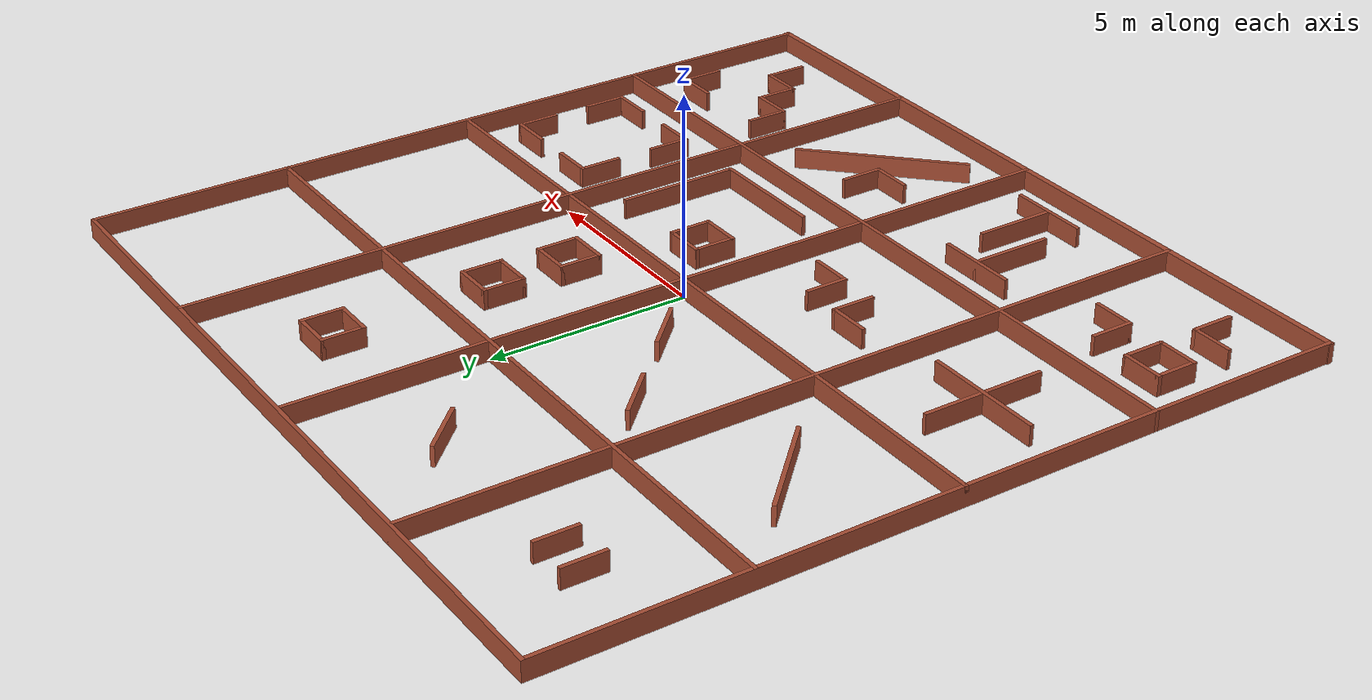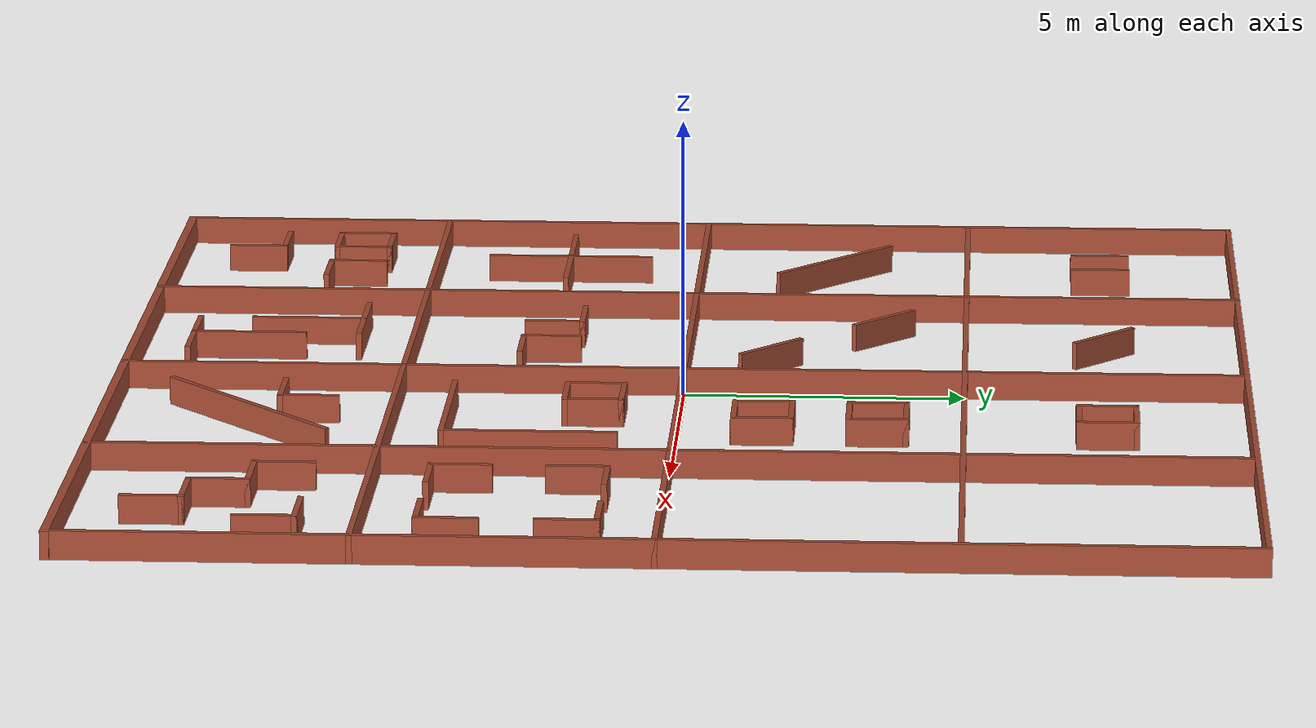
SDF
<?xml version='1.0'?>
<sdf version='1.7'>
  <model name='tb3_cplx_16'>
    <pose>0 -0.012499 0 0 -0 0</pose>
    <link name='Wall_0'>
      <collision name='Wall_0_Collision'>
        <geometry>
          <box>
            <size>20.1 0.1 0.5</size>
          </box>
        </geometry>
        <pose>0 0 0.25 0 -0 0</pose>
      </collision>
      <visual name='Wall_0_Visual'>
        <pose>0 0 0.25 0 -0 0</pose>
        <geometry>
          <box>
            <size>20.1 0.1 0.5</size>
          </box>
        </geometry>
        <material>
          <script>
            <uri>file://media/materials/scripts/gazebo.material</uri>
            <name>Gazebo/Bricks</name>
          </script>
          <ambient>0.760784 0.662745 0.627451 1</ambient>
        </material>
        <meta>
          <layer>0</layer>
        </meta>
      </visual>
      <pose>0 10.0125 0 0 -0 0</pose>
    </link>
    <link name='Wall_1'>
      <collision name='Wall_1_Collision'>
        <geometry>
          <box>
            <size>20.1 0.1 0.5</size>
          </box>
        </geometry>
        <pose>0 0 0.25 0 -0 0</pose>
      </collision>
      <visual name='Wall_1_Visual'>
        <pose>0 0 0.25 0 -0 0</pose>
        <geometry>
          <box>
            <size>20.1 0.1 0.5</size>
          </box>
        </geometry>
        <material>
          <script>
            <uri>file://media/materials/scripts/gazebo.material</uri>
            <name>Gazebo/Bricks</name>
          </script>
          <ambient>0.760784 0.662745 0.627451 1</ambient>
        </material>
        <meta>
          <layer>0</layer>
        </meta>
      </visual>
      <pose>10 0.012499 0 0 -0 -1.5708</pose>
    </link>
    <link name='Wall_100'>
      <collision name='Wall_100_Collision'>
        <geometry>
          <box>
            <size>1.1 0.1 0.5</size>
          </box>
        </geometry>
        <pose>0 0 0.25 0 -0 0</pose>
      </collision>
      <visual name='Wall_100_Visual'>
        <pose>0 0 0.25 0 -0 0</pose>
        <geometry>
          <box>
            <size>1.1 0.1 0.5</size>
          </box>
        </geometry>
        <material>
          <script>
            <uri>file://media/materials/scripts/gazebo.material</uri>
            <name>Gazebo/Bricks</name>
          </script>
          <ambient>0.760784 0.662745 0.627451 1</ambient>
        </material>
        <meta>
          <layer>0</layer>
        </meta>
      </visual>
      <pose>8.5 -0.987501 0 0 -0 0</pose>
    </link>
    <link name='Wall_101'>
      <collision name='Wall_101_Collision'>
        <geometry>
          <box>
            <size>1.1 0.1 0.5</size>
          </box>
        </geometry>
        <pose>0 0 0.25 0 -0 0</pose>
      </collision>
      <visual name='Wall_101_Visual'>
        <pose>0 0 0.25 0 -0 0</pose>
        <geometry>
          <box>
            <size>1.1 0.1 0.5</size>
          </box>
        </geometry>
        <material>
          <script>
            <uri>file://media/materials/scripts/gazebo.material</uri>
            <name>Gazebo/Bricks</name>
          </script>
          <ambient>0.760784 0.662745 0.627451 1</ambient>
        </material>
        <meta>
          <layer>0</layer>
        </meta>
      </visual>
      <pose>9 -1.4875 0 0 -0 -1.5708</pose>
    </link>
    <link name='Wall_103'>
      <collision name='Wall_103_Collision'>
        <geometry>
          <box>
            <size>1.1 0.1 0.5</size>
          </box>
        </geometry>
        <pose>0 0 0.25 0 -0 0</pose>
      </collision>
      <visual name='Wall_103_Visual'>
        <pose>0 0 0.25 0 -0 0</pose>
        <geometry>
          <box>
            <size>1.1 0.1 0.5</size>
          </box>
        </geometry>
        <material>
          <script>
            <uri>file://media/materials/scripts/gazebo.material</uri>
            <name>Gazebo/Bricks</name>
          </script>
          <ambient>0.760784 0.662745 0.627451 1</ambient>
        </material>
        <meta>
          <layer>0</layer>
        </meta>
      </visual>
      <pose>6 -3.4875 0 0 -0 -1.5708</pose>
    </link>
    <link name='Wall_104'>
      <collision name='Wall_104_Collision'>
        <geometry>
          <box>
            <size>1.1 0.1 0.5</size>
          </box>
        </geometry>
        <pose>0 0 0.25 0 -0 0</pose>
      </collision>
      <visual name='Wall_104_Visual'>
        <pose>0 0 0.25 0 -0 0</pose>
        <geometry>
          <box>
            <size>1.1 0.1 0.5</size>
          </box>
        </geometry>
        <material>
          <script>
            <uri>file://media/materials/scripts/gazebo.material</uri>
            <name>Gazebo/Bricks</name>
          </script>
          <ambient>0.760784 0.662745 0.627451 1</ambient>
        </material>
        <meta>
          <layer>0</layer>
        </meta>
      </visual>
      <pose>6.5 -3.9875 0 0 -0 0</pose>
    </link>
    <link name='Wall_106'>
      <collision name='Wall_106_Collision'>
        <geometry>
          <box>
            <size>1.1 0.1 0.5</size>
          </box>
        </geometry>
        <pose>0 0 0.25 0 -0 0</pose>
      </collision>
      <visual name='Wall_106_Visual'>
        <pose>0 0 0.25 0 -0 0</pose>
        <geometry>
          <box>
            <size>1.1 0.1 0.5</size>
          </box>
        </geometry>
        <material>
          <script>
            <uri>file://media/materials/scripts/gazebo.material</uri>
            <name>Gazebo/Bricks</name>
          </script>
          <ambient>0.760784 0.662745 0.627451 1</ambient>
        </material>
        <meta>
          <layer>0</layer>
        </meta>
      </visual>
      <pose>9 -3.4875 0 0 -0 -1.5708</pose>
    </link>
    <link name='Wall_107'>
      <collision name='Wall_107_Collision'>
        <geometry>
          <box>
            <size>1.1 0.1 0.5</size>
          </box>
        </geometry>
        <pose>0 0 0.25 0 -0 0</pose>
      </collision>
      <visual name='Wall_107_Visual'>
        <pose>0 0 0.25 0 -0 0</pose>
        <geometry>
          <box>
            <size>1.1 0.1 0.5</size>
          </box>
        </geometry>
        <material>
          <script>
            <uri>file://media/materials/scripts/gazebo.material</uri>
            <name>Gazebo/Bricks</name>
          </script>
          <ambient>0.760784 0.662745 0.627451 1</ambient>
        </material>
        <meta>
          <layer>0</layer>
        </meta>
      </visual>
      <pose>8.5 -3.9875 0 0 -0 3.14159</pose>
    </link>
    <link name='Wall_11'>
      <collision name='Wall_11_Collision'>
        <geometry>
          <box>
            <size>20.1 0.1 0.5</size>
          </box>
        </geometry>
        <pose>0 0 0.25 0 -0 0</pose>
      </collision>
      <visual name='Wall_11_Visual'>
        <pose>0 0 0.25 0 -0 0</pose>
        <geometry>
          <box>
            <size>20.1 0.1 0.5</size>
          </box>
        </geometry>
        <material>
          <script>
            <uri>file://media/materials/scripts/gazebo.material</uri>
            <name>Gazebo/Bricks</name>
          </script>
          <ambient>0.760784 0.662745 0.627451 1</ambient>
        </material>
        <meta>
          <layer>0</layer>
        </meta>
      </visual>
      <pose>0 0.012499 0 0 -0 -1.5708</pose>
    </link>
    <link name='Wall_13'>
      <collision name='Wall_13_Collision'>
        <geometry>
          <box>
            <size>20.1 0.1 0.5</size>
          </box>
        </geometry>
        <pose>0 0 0.25 0 -0 0</pose>
      </collision>
      <visual name='Wall_13_Visual'>
        <pose>0 0 0.25 0 -0 0</pose>
        <geometry>
          <box>
            <size>20.1 0.1 0.5</size>
          </box>
        </geometry>
        <material>
          <script>
            <uri>file://media/materials/scripts/gazebo.material</uri>
            <name>Gazebo/Bricks</name>
          </script>
          <ambient>0.760784 0.662745 0.627451 1</ambient>
        </material>
        <meta>
          <layer>0</layer>
        </meta>
      </visual>
      <pose>5 0.012499 0 0 -0 -1.5708</pose>
    </link>
    <link name='Wall_15'>
      <collision name='Wall_15_Collision'>
        <geometry>
          <box>
            <size>20.1 0.1 0.5</size>
          </box>
        </geometry>
        <pose>0 0 0.25 0 -0 0</pose>
      </collision>
      <visual name='Wall_15_Visual'>
        <pose>0 0 0.25 0 -0 0</pose>
        <geometry>
          <box>
            <size>20.1 0.1 0.5</size>
          </box>
        </geometry>
        <material>
          <script>
            <uri>file://media/materials/scripts/gazebo.material</uri>
            <name>Gazebo/Bricks</name>
          </script>
          <ambient>0.760784 0.662745 0.627451 1</ambient>
        </material>
        <meta>
          <layer>0</layer>
        </meta>
      </visual>
      <pose>0 0.012499 0 0 -0 0</pose>
    </link>
    <link name='Wall_17'>
      <collision name='Wall_17_Collision'>
        <geometry>
          <box>
            <size>1.51421 0.1 0.5</size>
          </box>
        </geometry>
        <pose>0 0 0.25 0 -0 0</pose>
      </collision>
      <visual name='Wall_17_Visual'>
        <pose>0 0 0.25 0 -0 0</pose>
        <geometry>
          <box>
            <size>1.51421 0.1 0.5</size>
          </box>
        </geometry>
        <material>
          <script>
            <uri>file://media/materials/scripts/gazebo.material</uri>
            <name>Gazebo/Bricks</name>
          </script>
          <ambient>0.760784 0.662745 0.627451 1</ambient>
        </material>
        <meta>
          <layer>0</layer>
        </meta>
      </visual>
      <pose>-2.5 7.5125 0 0 -0 2.35619</pose>
    </link>
    <link name='Wall_19'>
      <collision name='Wall_19_Collision'>
        <geometry>
          <box>
            <size>1.1 0.1 0.5</size>
          </box>
        </geometry>
        <pose>0 0 0.25 0 -0 0</pose>
      </collision>
      <visual name='Wall_19_Visual'>
        <pose>0 0 0.25 0 -0 0</pose>
        <geometry>
          <box>
            <size>1.1 0.1 0.5</size>
          </box>
        </geometry>
        <material>
          <script>
            <uri>file://media/materials/scripts/gazebo.material</uri>
            <name>Gazebo/Bricks</name>
          </script>
          <ambient>0.760784 0.662745 0.627451 1</ambient>
        </material>
        <meta>
          <layer>0</layer>
        </meta>
      </visual>
      <pose>2 7.5125 0 0 -0 -1.5708</pose>
    </link>
    <link name='Wall_2'>
      <collision name='Wall_2_Collision'>
        <geometry>
          <box>
            <size>20.15 0.15 0.5</size>
          </box>
        </geometry>
        <pose>0 0 0.25 0 -0 0</pose>
      </collision>
      <visual name='Wall_2_Visual'>
        <pose>0 0 0.25 0 -0 0</pose>
        <geometry>
          <box>
            <size>20.15 0.15 0.5</size>
          </box>
        </geometry>
        <material>
          <script>
            <uri>file://media/materials/scripts/gazebo.material</uri>
            <name>Gazebo/Bricks</name>
          </script>
          <ambient>0.760784 0.662745 0.627451 1</ambient>
        </material>
        <meta>
          <layer>0</layer>
        </meta>
      </visual>
      <pose>0 -9.9875 0 0 -0 3.14159</pose>
    </link>
    <link name='Wall_20'>
      <collision name='Wall_20_Collision'>
        <geometry>
          <box>
            <size>1.1 0.1 0.5</size>
          </box>
        </geometry>
        <pose>0 0 0.25 0 -0 0</pose>
      </collision>
      <visual name='Wall_20_Visual'>
        <pose>0 0 0.25 0 -0 0</pose>
        <geometry>
          <box>
            <size>1.1 0.1 0.5</size>
          </box>
        </geometry>
        <material>
          <script>
            <uri>file://media/materials/scripts/gazebo.material</uri>
            <name>Gazebo/Bricks</name>
          </script>
          <ambient>0.760784 0.662745 0.627451 1</ambient>
        </material>
        <meta>
          <layer>0</layer>
        </meta>
      </visual>
      <pose>2.5 7.0125 0 0 -0 0</pose>
    </link>
    <link name='Wall_21'>
      <collision name='Wall_21_Collision'>
        <geometry>
          <box>
            <size>1.1 0.1 0.5</size>
          </box>
        </geometry>
        <pose>0 0 0.25 0 -0 0</pose>
      </collision>
      <visual name='Wall_21_Visual'>
        <pose>0 0 0.25 0 -0 0</pose>
        <geometry>
          <box>
            <size>1.1 0.1 0.5</size>
          </box>
        </geometry>
        <material>
          <script>
            <uri>file://media/materials/scripts/gazebo.material</uri>
            <name>Gazebo/Bricks</name>
          </script>
          <ambient>0.760784 0.662745 0.627451 1</ambient>
        </material>
        <meta>
          <layer>0</layer>
        </meta>
      </visual>
      <pose>3 7.5125 0 0 -0 1.5708</pose>
    </link>
    <link name='Wall_22'>
      <collision name='Wall_22_Collision'>
        <geometry>
          <box>
            <size>1.1 0.1 0.5</size>
          </box>
        </geometry>
        <pose>0 0 0.25 0 -0 0</pose>
      </collision>
      <visual name='Wall_22_Visual'>
        <pose>0 0 0.25 0 -0 0</pose>
        <geometry>
          <box>
            <size>1.1 0.1 0.5</size>
          </box>
        </geometry>
        <material>
          <script>
            <uri>file://media/materials/scripts/gazebo.material</uri>
            <name>Gazebo/Bricks</name>
          </script>
          <ambient>0.760784 0.662745 0.627451 1</ambient>
        </material>
        <meta>
          <layer>0</layer>
        </meta>
      </visual>
      <pose>2.5 8.0125 0 0 -0 3.14159</pose>
    </link>
    <link name='Wall_24'>
      <collision name='Wall_24_Collision'>
        <geometry>
          <box>
            <size>2.92843 0.1 0.5</size>
          </box>
        </geometry>
        <pose>0 0 0.25 0 -0 0</pose>
      </collision>
      <visual name='Wall_24_Visual'>
        <pose>0 0 0.25 0 -0 0</pose>
        <geometry>
          <box>
            <size>2.92843 0.1 0.5</size>
          </box>
        </geometry>
        <material>
          <script>
            <uri>file://media/materials/scripts/gazebo.material</uri>
            <name>Gazebo/Bricks</name>
          </script>
          <ambient>0.760784 0.662745 0.627451 1</ambient>
        </material>
        <meta>
          <layer>0</layer>
        </meta>
      </visual>
      <pose>-7.5 2.5125 0 0 -0 -0.785398</pose>
    </link>
    <link name='Wall_26'>
      <collision name='Wall_26_Collision'>
        <geometry>
          <box>
            <size>1.51421 0.1 0.5</size>
          </box>
        </geometry>
        <pose>0 0 0.25 0 -0 0</pose>
      </collision>
      <visual name='Wall_26_Visual'>
        <pose>0 0 0.25 0 -0 0</pose>
        <geometry>
          <box>
            <size>1.51421 0.1 0.5</size>
          </box>
        </geometry>
        <material>
          <script>
            <uri>file://media/materials/scripts/gazebo.material</uri>
            <name>Gazebo/Bricks</name>
          </script>
          <ambient>0.760784 0.662745 0.627451 1</ambient>
        </material>
        <meta>
          <layer>0</layer>
        </meta>
      </visual>
      <pose>-3.5 3.5125 0 0 -0 -0.785398</pose>
    </link>
    <link name='Wall_28'>
      <collision name='Wall_28_Collision'>
        <geometry>
          <box>
            <size>1.51421 0.1 0.5</size>
          </box>
        </geometry>
        <pose>0 0 0.25 0 -0 0</pose>
      </collision>
      <visual name='Wall_28_Visual'>
        <pose>0 0 0.25 0 -0 0</pose>
        <geometry>
          <box>
            <size>1.51421 0.1 0.5</size>
          </box>
        </geometry>
        <material>
          <script>
            <uri>file://media/materials/scripts/gazebo.material</uri>
            <name>Gazebo/Bricks</name>
          </script>
          <ambient>0.760784 0.662745 0.627451 1</ambient>
        </material>
        <meta>
          <layer>0</layer>
        </meta>
      </visual>
      <pose>-1.5 1.5125 0 0 -0 -0.785398</pose>
    </link>
    <link name='Wall_3'>
      <collision name='Wall_3_Collision'>
        <geometry>
          <box>
            <size>20.1 0.1 0.5</size>
          </box>
        </geometry>
        <pose>0 0 0.25 0 -0 0</pose>
      </collision>
      <visual name='Wall_3_Visual'>
        <pose>0 0 0.25 0 -0 0</pose>
        <geometry>
          <box>
            <size>20.1 0.1 0.5</size>
          </box>
        </geometry>
        <material>
          <script>
            <uri>file://media/materials/scripts/gazebo.material</uri>
            <name>Gazebo/Bricks</name>
          </script>
          <ambient>0.760784 0.662745 0.627451 1</ambient>
        </material>
        <meta>
          <layer>0</layer>
        </meta>
      </visual>
      <pose>-10 0.012499 0 0 -0 1.5708</pose>
    </link>
    <link name='Wall_30'>
      <collision name='Wall_30_Collision'>
        <geometry>
          <box>
            <size>1.1 0.1 0.5</size>
          </box>
        </geometry>
        <pose>0 0 0.25 0 -0 0</pose>
      </collision>
      <visual name='Wall_30_Visual'>
        <pose>0 0 0.25 0 -0 0</pose>
        <geometry>
          <box>
            <size>1.1 0.1 0.5</size>
          </box>
        </geometry>
        <material>
          <script>
            <uri>file://media/materials/scripts/gazebo.material</uri>
            <name>Gazebo/Bricks</name>
          </script>
          <ambient>0.760784 0.662745 0.627451 1</ambient>
        </material>
        <meta>
          <layer>0</layer>
        </meta>
      </visual>
      <pose>2 3.5125 0 0 -0 -1.5708</pose>
    </link>
    <link name='Wall_31'>
      <collision name='Wall_31_Collision'>
        <geometry>
          <box>
            <size>1.1 0.1 0.5</size>
          </box>
        </geometry>
        <pose>0 0 0.25 0 -0 0</pose>
      </collision>
      <visual name='Wall_31_Visual'>
        <pose>0 0 0.25 0 -0 0</pose>
        <geometry>
          <box>
            <size>1.1 0.1 0.5</size>
          </box>
        </geometry>
        <material>
          <script>
            <uri>file://media/materials/scripts/gazebo.material</uri>
            <name>Gazebo/Bricks</name>
          </script>
          <ambient>0.760784 0.662745 0.627451 1</ambient>
        </material>
        <meta>
          <layer>0</layer>
        </meta>
      </visual>
      <pose>2.5 3.0125 0 0 -0 0</pose>
    </link>
    <link name='Wall_32'>
      <collision name='Wall_32_Collision'>
        <geometry>
          <box>
            <size>1.1 0.1 0.5</size>
          </box>
        </geometry>
        <pose>0 0 0.25 0 -0 0</pose>
      </collision>
      <visual name='Wall_32_Visual'>
        <pose>0 0 0.25 0 -0 0</pose>
        <geometry>
          <box>
            <size>1.1 0.1 0.5</size>
          </box>
        </geometry>
        <material>
          <script>
            <uri>file://media/materials/scripts/gazebo.material</uri>
            <name>Gazebo/Bricks</name>
          </script>
          <ambient>0.760784 0.662745 0.627451 1</ambient>
        </material>
        <meta>
          <layer>0</layer>
        </meta>
      </visual>
      <pose>3 3.5125 0 0 -0 1.5708</pose>
    </link>
    <link name='Wall_33'>
      <collision name='Wall_33_Collision'>
        <geometry>
          <box>
            <size>1.1 0.1 0.5</size>
          </box>
        </geometry>
        <pose>0 0 0.25 0 -0 0</pose>
      </collision>
      <visual name='Wall_33_Visual'>
        <pose>0 0 0.25 0 -0 0</pose>
        <geometry>
          <box>
            <size>1.1 0.1 0.5</size>
          </box>
        </geometry>
        <material>
          <script>
            <uri>file://media/materials/scripts/gazebo.material</uri>
            <name>Gazebo/Bricks</name>
          </script>
          <ambient>0.760784 0.662745 0.627451 1</ambient>
        </material>
        <meta>
          <layer>0</layer>
        </meta>
      </visual>
      <pose>2.5 4.0125 0 0 -0 3.14159</pose>
    </link>
    <link name='Wall_35'>
      <collision name='Wall_35_Collision'>
        <geometry>
          <box>
            <size>1.1 0.1 0.5</size>
          </box>
        </geometry>
        <pose>0 0 0.25 0 -0 0</pose>
      </collision>
      <visual name='Wall_35_Visual'>
        <pose>0 0 0.25 0 -0 0</pose>
        <geometry>
          <box>
            <size>1.1 0.1 0.5</size>
          </box>
        </geometry>
        <material>
          <script>
            <uri>file://media/materials/scripts/gazebo.material</uri>
            <name>Gazebo/Bricks</name>
          </script>
          <ambient>0.760784 0.662745 0.627451 1</ambient>
        </material>
        <meta>
          <layer>0</layer>
        </meta>
      </visual>
      <pose>2 1.5125 0 0 -0 -1.5708</pose>
    </link>
    <link name='Wall_36'>
      <collision name='Wall_36_Collision'>
        <geometry>
          <box>
            <size>1.1 0.1 0.5</size>
          </box>
        </geometry>
        <pose>0 0 0.25 0 -0 0</pose>
      </collision>
      <visual name='Wall_36_Visual'>
        <pose>0 0 0.25 0 -0 0</pose>
        <geometry>
          <box>
            <size>1.1 0.1 0.5</size>
          </box>
        </geometry>
        <material>
          <script>
            <uri>file://media/materials/scripts/gazebo.material</uri>
            <name>Gazebo/Bricks</name>
          </script>
          <ambient>0.760784 0.662745 0.627451 1</ambient>
        </material>
        <meta>
          <layer>0</layer>
        </meta>
      </visual>
      <pose>2.5 1.0125 0 0 -0 0</pose>
    </link>
    <link name='Wall_37'>
      <collision name='Wall_37_Collision'>
        <geometry>
          <box>
            <size>1.1 0.1 0.5</size>
          </box>
        </geometry>
        <pose>0 0 0.25 0 -0 0</pose>
      </collision>
      <visual name='Wall_37_Visual'>
        <pose>0 0 0.25 0 -0 0</pose>
        <geometry>
          <box>
            <size>1.1 0.1 0.5</size>
          </box>
        </geometry>
        <material>
          <script>
            <uri>file://media/materials/scripts/gazebo.material</uri>
            <name>Gazebo/Bricks</name>
          </script>
          <ambient>0.760784 0.662745 0.627451 1</ambient>
        </material>
        <meta>
          <layer>0</layer>
        </meta>
      </visual>
      <pose>3 1.5125 0 0 -0 1.5708</pose>
    </link>
    <link name='Wall_38'>
      <collision name='Wall_38_Collision'>
        <geometry>
          <box>
            <size>1.1 0.1 0.5</size>
          </box>
        </geometry>
        <pose>0 0 0.25 0 -0 0</pose>
      </collision>
      <visual name='Wall_38_Visual'>
        <pose>0 0 0.25 0 -0 0</pose>
        <geometry>
          <box>
            <size>1.1 0.1 0.5</size>
          </box>
        </geometry>
        <material>
          <script>
            <uri>file://media/materials/scripts/gazebo.material</uri>
            <name>Gazebo/Bricks</name>
          </script>
          <ambient>0.760784 0.662745 0.627451 1</ambient>
        </material>
        <meta>
          <layer>0</layer>
        </meta>
      </visual>
      <pose>2.5 2.0125 0 0 -0 3.14159</pose>
    </link>
    <link name='Wall_40'>
      <collision name='Wall_40_Collision'>
        <geometry>
          <box>
            <size>3.1 0.1 0.5</size>
          </box>
        </geometry>
        <pose>0 0 0.25 0 -0 0</pose>
      </collision>
      <visual name='Wall_40_Visual'>
        <pose>0 0 0.25 0 -0 0</pose>
        <geometry>
          <box>
            <size>3.1 0.1 0.5</size>
          </box>
        </geometry>
        <material>
          <script>
            <uri>file://media/materials/scripts/gazebo.material</uri>
            <name>Gazebo/Bricks</name>
          </script>
          <ambient>0.760784 0.662745 0.627451 1</ambient>
        </material>
        <meta>
          <layer>0</layer>
        </meta>
      </visual>
      <pose>-7.5 -2.4875 0 0 -0 0</pose>
    </link>
    <link name='Wall_42'>
      <collision name='Wall_42_Collision'>
        <geometry>
          <box>
            <size>3.1 0.1 0.5</size>
          </box>
        </geometry>
        <pose>0 0 0.25 0 -0 0</pose>
      </collision>
      <visual name='Wall_42_Visual'>
        <pose>0 0 0.25 0 -0 0</pose>
        <geometry>
          <box>
            <size>3.1 0.1 0.5</size>
          </box>
        </geometry>
        <material>
          <script>
            <uri>file://media/materials/scripts/gazebo.material</uri>
            <name>Gazebo/Bricks</name>
          </script>
          <ambient>0.760784 0.662745 0.627451 1</ambient>
        </material>
        <meta>
          <layer>0</layer>
        </meta>
      </visual>
      <pose>-7.5 -2.4875 0 0 -0 -1.5708</pose>
    </link>
    <link name='Wall_44'>
      <collision name='Wall_44_Collision'>
        <geometry>
          <box>
            <size>1.1 0.1 0.5</size>
          </box>
        </geometry>
        <pose>0 0 0.25 0 -0 0</pose>
      </collision>
      <visual name='Wall_44_Visual'>
        <pose>0 0 0.25 0 -0 0</pose>
        <geometry>
          <box>
            <size>1.1 0.1 0.5</size>
          </box>
        </geometry>
        <material>
          <script>
            <uri>file://media/materials/scripts/gazebo.material</uri>
            <name>Gazebo/Bricks</name>
          </script>
          <ambient>0.760784 0.662745 0.627451 1</ambient>
        </material>
        <meta>
          <layer>0</layer>
        </meta>
      </visual>
      <pose>-9 -6.4875 0 0 -0 -1.5708</pose>
    </link>
    <link name='Wall_45'>
      <collision name='Wall_45_Collision'>
        <geometry>
          <box>
            <size>1.1 0.1 0.5</size>
          </box>
        </geometry>
        <pose>0 0 0.25 0 -0 0</pose>
      </collision>
      <visual name='Wall_45_Visual'>
        <pose>0 0 0.25 0 -0 0</pose>
        <geometry>
          <box>
            <size>1.1 0.1 0.5</size>
          </box>
        </geometry>
        <material>
          <script>
            <uri>file://media/materials/scripts/gazebo.material</uri>
            <name>Gazebo/Bricks</name>
          </script>
          <ambient>0.760784 0.662745 0.627451 1</ambient>
        </material>
        <meta>
          <layer>0</layer>
        </meta>
      </visual>
      <pose>-8.5 -6.9875 0 0 -0 0</pose>
    </link>
    <link name='Wall_46'>
      <collision name='Wall_46_Collision'>
        <geometry>
          <box>
            <size>1.1 0.1 0.5</size>
          </box>
        </geometry>
        <pose>0 0 0.25 0 -0 0</pose>
      </collision>
      <visual name='Wall_46_Visual'>
        <pose>0 0 0.25 0 -0 0</pose>
        <geometry>
          <box>
            <size>1.1 0.1 0.5</size>
          </box>
        </geometry>
        <material>
          <script>
            <uri>file://media/materials/scripts/gazebo.material</uri>
            <name>Gazebo/Bricks</name>
          </script>
          <ambient>0.760784 0.662745 0.627451 1</ambient>
        </material>
        <meta>
          <layer>0</layer>
        </meta>
      </visual>
      <pose>-8 -6.4875 0 0 -0 1.5708</pose>
    </link>
    <link name='Wall_47'>
      <collision name='Wall_47_Collision'>
        <geometry>
          <box>
            <size>1.1 0.1 0.5</size>
          </box>
        </geometry>
        <pose>0 0 0.25 0 -0 0</pose>
      </collision>
      <visual name='Wall_47_Visual'>
        <pose>0 0 0.25 0 -0 0</pose>
        <geometry>
          <box>
            <size>1.1 0.1 0.5</size>
          </box>
        </geometry>
        <material>
          <script>
            <uri>file://media/materials/scripts/gazebo.material</uri>
            <name>Gazebo/Bricks</name>
          </script>
          <ambient>0.760784 0.662745 0.627451 1</ambient>
        </material>
        <meta>
          <layer>0</layer>
        </meta>
      </visual>
      <pose>-8.5 -5.9875 0 0 -0 3.14159</pose>
    </link>
    <link name='Wall_49'>
      <collision name='Wall_49_Collision'>
        <geometry>
          <box>
            <size>1.1 0.1 0.5</size>
          </box>
        </geometry>
        <pose>0 0 0.25 0 -0 0</pose>
      </collision>
      <visual name='Wall_49_Visual'>
        <pose>0 0 0.25 0 -0 0</pose>
        <geometry>
          <box>
            <size>1.1 0.1 0.5</size>
          </box>
        </geometry>
        <material>
          <script>
            <uri>file://media/materials/scripts/gazebo.material</uri>
            <name>Gazebo/Bricks</name>
          </script>
          <ambient>0.760784 0.662745 0.627451 1</ambient>
        </material>
        <meta>
          <layer>0</layer>
        </meta>
      </visual>
      <pose>-7 -6.4875 0 0 -0 -1.5708</pose>
    </link>
    <link name='Wall_5'>
      <collision name='Wall_5_Collision'>
        <geometry>
          <box>
            <size>20.1 0.1 0.5</size>
          </box>
        </geometry>
        <pose>0 0 0.25 0 -0 0</pose>
      </collision>
      <visual name='Wall_5_Visual'>
        <pose>0 0 0.25 0 -0 0</pose>
        <geometry>
          <box>
            <size>20.1 0.1 0.5</size>
          </box>
        </geometry>
        <material>
          <script>
            <uri>file://media/materials/scripts/gazebo.material</uri>
            <name>Gazebo/Bricks</name>
          </script>
          <ambient>0.760784 0.662745 0.627451 1</ambient>
        </material>
        <meta>
          <layer>0</layer>
        </meta>
      </visual>
      <pose>0 5.0125 0 0 -0 0</pose>
    </link>
    <link name='Wall_50'>
      <collision name='Wall_50_Collision'>
        <geometry>
          <box>
            <size>1.1 0.1 0.5</size>
          </box>
        </geometry>
        <pose>0 0 0.25 0 -0 0</pose>
      </collision>
      <visual name='Wall_50_Visual'>
        <pose>0 0 0.25 0 -0 0</pose>
        <geometry>
          <box>
            <size>1.1 0.1 0.5</size>
          </box>
        </geometry>
        <material>
          <script>
            <uri>file://media/materials/scripts/gazebo.material</uri>
            <name>Gazebo/Bricks</name>
          </script>
          <ambient>0.760784 0.662745 0.627451 1</ambient>
        </material>
        <meta>
          <layer>0</layer>
        </meta>
      </visual>
      <pose>-6.5 -6.9875 0 0 -0 0</pose>
    </link>
    <link name='Wall_52'>
      <collision name='Wall_52_Collision'>
        <geometry>
          <box>
            <size>1.1 0.1 0.5</size>
          </box>
        </geometry>
        <pose>0 0 0.25 0 -0 0</pose>
      </collision>
      <visual name='Wall_52_Visual'>
        <pose>0 0 0.25 0 -0 0</pose>
        <geometry>
          <box>
            <size>1.1 0.1 0.5</size>
          </box>
        </geometry>
        <material>
          <script>
            <uri>file://media/materials/scripts/gazebo.material</uri>
            <name>Gazebo/Bricks</name>
          </script>
          <ambient>0.760784 0.662745 0.627451 1</ambient>
        </material>
        <meta>
          <layer>0</layer>
        </meta>
      </visual>
      <pose>-8.5 -7.9875 0 0 -0 0</pose>
    </link>
    <link name='Wall_53'>
      <collision name='Wall_53_Collision'>
        <geometry>
          <box>
            <size>1.1 0.1 0.5</size>
          </box>
        </geometry>
        <pose>0 0 0.25 0 -0 0</pose>
      </collision>
      <visual name='Wall_53_Visual'>
        <pose>0 0 0.25 0 -0 0</pose>
        <geometry>
          <box>
            <size>1.1 0.1 0.5</size>
          </box>
        </geometry>
        <material>
          <script>
            <uri>file://media/materials/scripts/gazebo.material</uri>
            <name>Gazebo/Bricks</name>
          </script>
          <ambient>0.760784 0.662745 0.627451 1</ambient>
        </material>
        <meta>
          <layer>0</layer>
        </meta>
      </visual>
      <pose>-8 -8.4875 0 0 -0 -1.5708</pose>
    </link>
    <link name='Wall_55'>
      <collision name='Wall_55_Collision'>
        <geometry>
          <box>
            <size>4.34264 0.1 0.5</size>
          </box>
        </geometry>
        <pose>0 0 0.25 0 -0 0</pose>
      </collision>
      <visual name='Wall_55_Visual'>
        <pose>0 0 0.25 0 -0 0</pose>
        <geometry>
          <box>
            <size>4.34264 0.1 0.5</size>
          </box>
        </geometry>
        <material>
          <script>
            <uri>file://media/materials/scripts/gazebo.material</uri>
            <name>Gazebo/Bricks</name>
          </script>
          <ambient>0.760784 0.662745 0.627451 1</ambient>
        </material>
        <meta>
          <layer>0</layer>
        </meta>
      </visual>
      <pose>2.5 -7.4875 0 0 -0 -2.35619</pose>
    </link>
    <link name='Wall_57'>
      <collision name='Wall_57_Collision'>
        <geometry>
          <box>
            <size>1.1 0.1 0.5</size>
          </box>
        </geometry>
        <pose>0 0 0.25 0 -0 0</pose>
      </collision>
      <visual name='Wall_57_Visual'>
        <pose>0 0 0.25 0 -0 0</pose>
        <geometry>
          <box>
            <size>1.1 0.1 0.5</size>
          </box>
        </geometry>
        <material>
          <script>
            <uri>file://media/materials/scripts/gazebo.material</uri>
            <name>Gazebo/Bricks</name>
          </script>
          <ambient>0.760784 0.662745 0.627451 1</ambient>
        </material>
        <meta>
          <layer>0</layer>
        </meta>
      </visual>
      <pose>6 -6.4875 0 0 -0 -1.5708</pose>
    </link>
    <link name='Wall_58'>
      <collision name='Wall_58_Collision'>
        <geometry>
          <box>
            <size>1.1 0.1 0.5</size>
          </box>
        </geometry>
        <pose>0 0 0.25 0 -0 0</pose>
      </collision>
      <visual name='Wall_58_Visual'>
        <pose>0 0 0.25 0 -0 0</pose>
        <geometry>
          <box>
            <size>1.1 0.1 0.5</size>
          </box>
        </geometry>
        <material>
          <script>
            <uri>file://media/materials/scripts/gazebo.material</uri>
            <name>Gazebo/Bricks</name>
          </script>
          <ambient>0.760784 0.662745 0.627451 1</ambient>
        </material>
        <meta>
          <layer>0</layer>
        </meta>
      </visual>
      <pose>6.5 -6.9875 0 0 -0 0</pose>
    </link>
    <link name='Wall_59'>
      <collision name='Wall_59_Collision'>
        <geometry>
          <box>
            <size>1.1 0.1 0.5</size>
          </box>
        </geometry>
        <pose>0 0 0.25 0 -0 0</pose>
      </collision>
      <visual name='Wall_59_Visual'>
        <pose>0 0 0.25 0 -0 0</pose>
        <geometry>
          <box>
            <size>1.1 0.1 0.5</size>
          </box>
        </geometry>
        <material>
          <script>
            <uri>file://media/materials/scripts/gazebo.material</uri>
            <name>Gazebo/Bricks</name>
          </script>
          <ambient>0.760784 0.662745 0.627451 1</ambient>
        </material>
        <meta>
          <layer>0</layer>
        </meta>
      </visual>
      <pose>7 -7.4875 0 0 -0 -1.5708</pose>
    </link>
    <link name='Wall_60'>
      <collision name='Wall_60_Collision'>
        <geometry>
          <box>
            <size>1.1 0.1 0.5</size>
          </box>
        </geometry>
        <pose>0 0 0.25 0 -0 0</pose>
      </collision>
      <visual name='Wall_60_Visual'>
        <pose>0 0 0.25 0 -0 0</pose>
        <geometry>
          <box>
            <size>1.1 0.1 0.5</size>
          </box>
        </geometry>
        <material>
          <script>
            <uri>file://media/materials/scripts/gazebo.material</uri>
            <name>Gazebo/Bricks</name>
          </script>
          <ambient>0.760784 0.662745 0.627451 1</ambient>
        </material>
        <meta>
          <layer>0</layer>
        </meta>
      </visual>
      <pose>7.5 -7.9875 0 0 -0 0</pose>
    </link>
    <link name='Wall_61'>
      <collision name='Wall_61_Collision'>
        <geometry>
          <box>
            <size>1.1 0.1 0.5</size>
          </box>
        </geometry>
        <pose>0 0 0.25 0 -0 0</pose>
      </collision>
      <visual name='Wall_61_Visual'>
        <pose>0 0 0.25 0 -0 0</pose>
        <geometry>
          <box>
            <size>1.1 0.1 0.5</size>
          </box>
        </geometry>
        <material>
          <script>
            <uri>file://media/materials/scripts/gazebo.material</uri>
            <name>Gazebo/Bricks</name>
          </script>
          <ambient>0.760784 0.662745 0.627451 1</ambient>
        </material>
        <meta>
          <layer>0</layer>
        </meta>
      </visual>
      <pose>8 -8.4875 0 0 -0 -1.5708</pose>
    </link>
    <link name='Wall_63'>
      <collision name='Wall_63_Collision'>
        <geometry>
          <box>
            <size>1.1 0.1 0.5</size>
          </box>
        </geometry>
        <pose>0 0 0.25 0 -0 0</pose>
      </collision>
      <visual name='Wall_63_Visual'>
        <pose>0 0 0.25 0 -0 0</pose>
        <geometry>
          <box>
            <size>1.1 0.1 0.5</size>
          </box>
        </geometry>
        <material>
          <script>
            <uri>file://media/materials/scripts/gazebo.material</uri>
            <name>Gazebo/Bricks</name>
          </script>
          <ambient>0.760784 0.662745 0.627451 1</ambient>
        </material>
        <meta>
          <layer>0</layer>
        </meta>
      </visual>
      <pose>8.5 -5.9875 0 0 -0 0</pose>
    </link>
    <link name='Wall_64'>
      <collision name='Wall_64_Collision'>
        <geometry>
          <box>
            <size>1.1 0.1 0.5</size>
          </box>
        </geometry>
        <pose>0 0 0.25 0 -0 0</pose>
      </collision>
      <visual name='Wall_64_Visual'>
        <pose>0 0 0.25 0 -0 0</pose>
        <geometry>
          <box>
            <size>1.1 0.1 0.5</size>
          </box>
        </geometry>
        <material>
          <script>
            <uri>file://media/materials/scripts/gazebo.material</uri>
            <name>Gazebo/Bricks</name>
          </script>
          <ambient>0.760784 0.662745 0.627451 1</ambient>
        </material>
        <meta>
          <layer>0</layer>
        </meta>
      </visual>
      <pose>9 -6.4875 0 0 -0 -1.5708</pose>
    </link>
    <link name='Wall_66'>
      <collision name='Wall_66_Collision'>
        <geometry>
          <box>
            <size>2.1 0.1 0.5</size>
          </box>
        </geometry>
        <pose>0 0 0.25 0 -0 0</pose>
      </collision>
      <visual name='Wall_66_Visual'>
        <pose>0 0 0.25 0 -0 0</pose>
        <geometry>
          <box>
            <size>2.1 0.1 0.5</size>
          </box>
        </geometry>
        <material>
          <script>
            <uri>file://media/materials/scripts/gazebo.material</uri>
            <name>Gazebo/Bricks</name>
          </script>
          <ambient>0.760784 0.662745 0.627451 1</ambient>
        </material>
        <meta>
          <layer>0</layer>
        </meta>
      </visual>
      <pose>-3 -5.9875 0 0 -0 0</pose>
    </link>
    <link name='Wall_68'>
      <collision name='Wall_68_Collision'>
        <geometry>
          <box>
            <size>2.1 0.1 0.5</size>
          </box>
        </geometry>
        <pose>0 0 0.25 0 -0 0</pose>
      </collision>
      <visual name='Wall_68_Visual'>
        <pose>0 0 0.25 0 -0 0</pose>
        <geometry>
          <box>
            <size>2.1 0.1 0.5</size>
          </box>
        </geometry>
        <material>
          <script>
            <uri>file://media/materials/scripts/gazebo.material</uri>
            <name>Gazebo/Bricks</name>
          </script>
          <ambient>0.760784 0.662745 0.627451 1</ambient>
        </material>
        <meta>
          <layer>0</layer>
        </meta>
      </visual>
      <pose>-3 -6.9875 0 0 -0 -1.5708</pose>
    </link>
    <link name='Wall_7'>
      <collision name='Wall_7_Collision'>
        <geometry>
          <box>
            <size>20.1 0.1 0.5</size>
          </box>
        </geometry>
        <pose>0 0 0.25 0 -0 0</pose>
      </collision>
      <visual name='Wall_7_Visual'>
        <pose>0 0 0.25 0 -0 0</pose>
        <geometry>
          <box>
            <size>20.1 0.1 0.5</size>
          </box>
        </geometry>
        <material>
          <script>
            <uri>file://media/materials/scripts/gazebo.material</uri>
            <name>Gazebo/Bricks</name>
          </script>
          <ambient>0.760784 0.662745 0.627451 1</ambient>
        </material>
        <meta>
          <layer>0</layer>
        </meta>
      </visual>
      <pose>0 -4.9875 0 0 -0 0</pose>
    </link>
    <link name='Wall_70'>
      <collision name='Wall_70_Collision'>
        <geometry>
          <box>
            <size>2.1 0.1 0.5</size>
          </box>
        </geometry>
        <pose>0 0 0.25 0 -0 0</pose>
      </collision>
      <visual name='Wall_70_Visual'>
        <pose>0 0 0.25 0 -0 0</pose>
        <geometry>
          <box>
            <size>2.1 0.1 0.5</size>
          </box>
        </geometry>
        <material>
          <script>
            <uri>file://media/materials/scripts/gazebo.material</uri>
            <name>Gazebo/Bricks</name>
          </script>
          <ambient>0.760784 0.662745 0.627451 1</ambient>
        </material>
        <meta>
          <layer>0</layer>
        </meta>
      </visual>
      <pose>-2 -7.9875 0 0 -0 -1.5708</pose>
    </link>
    <link name='Wall_72'>
      <collision name='Wall_72_Collision'>
        <geometry>
          <box>
            <size>2.1 0.1 0.5</size>
          </box>
        </geometry>
        <pose>0 0 0.25 0 -0 0</pose>
      </collision>
      <visual name='Wall_72_Visual'>
        <pose>0 0 0.25 0 -0 0</pose>
        <geometry>
          <box>
            <size>2.1 0.1 0.5</size>
          </box>
        </geometry>
        <material>
          <script>
            <uri>file://media/materials/scripts/gazebo.material</uri>
            <name>Gazebo/Bricks</name>
          </script>
          <ambient>0.760784 0.662745 0.627451 1</ambient>
        </material>
        <meta>
          <layer>0</layer>
        </meta>
      </visual>
      <pose>-2 -8.9875 0 0 -0 0</pose>
    </link>
    <link name='Wall_74'>
      <collision name='Wall_74_Collision'>
        <geometry>
          <box>
            <size>1.1 0.1 0.5</size>
          </box>
        </geometry>
        <pose>0 0 0.25 0 -0 0</pose>
      </collision>
      <visual name='Wall_74_Visual'>
        <pose>0 0 0.25 0 -0 0</pose>
        <geometry>
          <box>
            <size>1.1 0.1 0.5</size>
          </box>
        </geometry>
        <material>
          <script>
            <uri>file://media/materials/scripts/gazebo.material</uri>
            <name>Gazebo/Bricks</name>
          </script>
          <ambient>0.760784 0.662745 0.627451 1</ambient>
        </material>
        <meta>
          <layer>0</layer>
        </meta>
      </visual>
      <pose>-3.5 -1.9875 0 0 -0 0</pose>
    </link>
    <link name='Wall_75'>
      <collision name='Wall_75_Collision'>
        <geometry>
          <box>
            <size>1.1 0.1 0.5</size>
          </box>
        </geometry>
        <pose>0 0 0.25 0 -0 0</pose>
      </collision>
      <visual name='Wall_75_Visual'>
        <pose>0 0 0.25 0 -0 0</pose>
        <geometry>
          <box>
            <size>1.1 0.1 0.5</size>
          </box>
        </geometry>
        <material>
          <script>
            <uri>file://media/materials/scripts/gazebo.material</uri>
            <name>Gazebo/Bricks</name>
          </script>
          <ambient>0.760784 0.662745 0.627451 1</ambient>
        </material>
        <meta>
          <layer>0</layer>
        </meta>
      </visual>
      <pose>-3 -2.4875 0 0 -0 -1.5708</pose>
    </link>
    <link name='Wall_77'>
      <collision name='Wall_77_Collision'>
        <geometry>
          <box>
            <size>1.1 0.1 0.5</size>
          </box>
        </geometry>
        <pose>0 0 0.25 0 -0 0</pose>
      </collision>
      <visual name='Wall_77_Visual'>
        <pose>0 0 0.25 0 -0 0</pose>
        <geometry>
          <box>
            <size>1.1 0.1 0.5</size>
          </box>
        </geometry>
        <material>
          <script>
            <uri>file://media/materials/scripts/gazebo.material</uri>
            <name>Gazebo/Bricks</name>
          </script>
          <ambient>0.760784 0.662745 0.627451 1</ambient>
        </material>
        <meta>
          <layer>0</layer>
        </meta>
      </visual>
      <pose>-2 -2.4875 0 0 -0 -1.5708</pose>
    </link>
    <link name='Wall_78'>
      <collision name='Wall_78_Collision'>
        <geometry>
          <box>
            <size>1.1 0.1 0.5</size>
          </box>
        </geometry>
        <pose>0 0 0.25 0 -0 0</pose>
      </collision>
      <visual name='Wall_78_Visual'>
        <pose>0 0 0.25 0 -0 0</pose>
        <geometry>
          <box>
            <size>1.1 0.1 0.5</size>
          </box>
        </geometry>
        <material>
          <script>
            <uri>file://media/materials/scripts/gazebo.material</uri>
            <name>Gazebo/Bricks</name>
          </script>
          <ambient>0.760784 0.662745 0.627451 1</ambient>
        </material>
        <meta>
          <layer>0</layer>
        </meta>
      </visual>
      <pose>-1.5 -2.9875 0 0 -0 0</pose>
    </link>
    <link name='Wall_80'>
      <collision name='Wall_80_Collision'>
        <geometry>
          <box>
            <size>1.1 0.1 0.5</size>
          </box>
        </geometry>
        <pose>0 0 0.25 0 -0 0</pose>
      </collision>
      <visual name='Wall_80_Visual'>
        <pose>0 0 0.25 0 -0 0</pose>
        <geometry>
          <box>
            <size>1.1 0.1 0.5</size>
          </box>
        </geometry>
        <material>
          <script>
            <uri>file://media/materials/scripts/gazebo.material</uri>
            <name>Gazebo/Bricks</name>
          </script>
          <ambient>0.760784 0.662745 0.627451 1</ambient>
        </material>
        <meta>
          <layer>0</layer>
        </meta>
      </visual>
      <pose>1 -1.4875 0 0 -0 -1.5708</pose>
    </link>
    <link name='Wall_81'>
      <collision name='Wall_81_Collision'>
        <geometry>
          <box>
            <size>1.1 0.1 0.5</size>
          </box>
        </geometry>
        <pose>0 0 0.25 0 -0 0</pose>
      </collision>
      <visual name='Wall_81_Visual'>
        <pose>0 0 0.25 0 -0 0</pose>
        <geometry>
          <box>
            <size>1.1 0.1 0.5</size>
          </box>
        </geometry>
        <material>
          <script>
            <uri>file://media/materials/scripts/gazebo.material</uri>
            <name>Gazebo/Bricks</name>
          </script>
          <ambient>0.760784 0.662745 0.627451 1</ambient>
        </material>
        <meta>
          <layer>0</layer>
        </meta>
      </visual>
      <pose>1.5 -1.9875 0 0 -0 0</pose>
    </link>
    <link name='Wall_82'>
      <collision name='Wall_82_Collision'>
        <geometry>
          <box>
            <size>1.1 0.1 0.5</size>
          </box>
        </geometry>
        <pose>0 0 0.25 0 -0 0</pose>
      </collision>
      <visual name='Wall_82_Visual'>
        <pose>0 0 0.25 0 -0 0</pose>
        <geometry>
          <box>
            <size>1.1 0.1 0.5</size>
          </box>
        </geometry>
        <material>
          <script>
            <uri>file://media/materials/scripts/gazebo.material</uri>
            <name>Gazebo/Bricks</name>
          </script>
          <ambient>0.760784 0.662745 0.627451 1</ambient>
        </material>
        <meta>
          <layer>0</layer>
        </meta>
      </visual>
      <pose>2 -1.4875 0 0 -0 1.5708</pose>
    </link>
    <link name='Wall_83'>
      <collision name='Wall_83_Collision'>
        <geometry>
          <box>
            <size>1.1 0.1 0.5</size>
          </box>
        </geometry>
        <pose>0 0 0.25 0 -0 0</pose>
      </collision>
      <visual name='Wall_83_Visual'>
        <pose>0 0 0.25 0 -0 0</pose>
        <geometry>
          <box>
            <size>1.1 0.1 0.5</size>
          </box>
        </geometry>
        <material>
          <script>
            <uri>file://media/materials/scripts/gazebo.material</uri>
            <name>Gazebo/Bricks</name>
          </script>
          <ambient>0.760784 0.662745 0.627451 1</ambient>
        </material>
        <meta>
          <layer>0</layer>
        </meta>
      </visual>
      <pose>1.5 -0.987501 0 0 -0 3.14159</pose>
    </link>
    <link name='Wall_87'>
      <collision name='Wall_87_Collision'>
        <geometry>
          <box>
            <size>3.1 0.1 0.5</size>
          </box>
        </geometry>
        <pose>0 0 0.25 0 -0 0</pose>
      </collision>
      <visual name='Wall_87_Visual'>
        <pose>0 0 0.25 0 -0 0</pose>
        <geometry>
          <box>
            <size>3.1 0.1 0.5</size>
          </box>
        </geometry>
        <material>
          <script>
            <uri>file://media/materials/scripts/gazebo.material</uri>
            <name>Gazebo/Bricks</name>
          </script>
          <ambient>0.760784 0.662745 0.627451 1</ambient>
        </material>
        <meta>
          <layer>0</layer>
        </meta>
      </visual>
      <pose>2.5 -3.9875 0 0 -0 0</pose>
    </link>
    <link name='Wall_88'>
      <collision name='Wall_88_Collision'>
        <geometry>
          <box>
            <size>3.1 0.1 0.5</size>
          </box>
        </geometry>
        <pose>0 0 0.25 0 -0 0</pose>
      </collision>
      <visual name='Wall_88_Visual'>
        <pose>0 0 0.25 0 -0 0</pose>
        <geometry>
          <box>
            <size>3.1 0.1 0.5</size>
          </box>
        </geometry>
        <material>
          <script>
            <uri>file://media/materials/scripts/gazebo.material</uri>
            <name>Gazebo/Bricks</name>
          </script>
          <ambient>0.760784 0.662745 0.627451 1</ambient>
        </material>
        <meta>
          <layer>0</layer>
        </meta>
      </visual>
      <pose>4 -2.4875 0 0 -0 1.5708</pose>
    </link>
    <link name='Wall_9'>
      <collision name='Wall_9_Collision'>
        <geometry>
          <box>
            <size>20.1 0.1 0.5</size>
          </box>
        </geometry>
        <pose>0 0 0.25 0 -0 0</pose>
      </collision>
      <visual name='Wall_9_Visual'>
        <pose>0 0 0.25 0 -0 0</pose>
        <geometry>
          <box>
            <size>20.1 0.1 0.5</size>
          </box>
        </geometry>
        <material>
          <script>
            <uri>file://media/materials/scripts/gazebo.material</uri>
            <name>Gazebo/Bricks</name>
          </script>
          <ambient>0.760784 0.662745 0.627451 1</ambient>
        </material>
        <meta>
          <layer>0</layer>
        </meta>
      </visual>
      <pose>-5 0.012499 0 0 -0 -1.5708</pose>
    </link>
    <link name='Wall_90'>
      <collision name='Wall_90_Collision'>
        <geometry>
          <box>
            <size>1.1 0.1 0.5</size>
          </box>
        </geometry>
        <pose>0 0 0.25 0 -0 0</pose>
      </collision>
      <visual name='Wall_90_Visual'>
        <pose>0 0 0.25 0 -0 0</pose>
        <geometry>
          <box>
            <size>1.1 0.1 0.5</size>
          </box>
        </geometry>
        <material>
          <script>
            <uri>file://media/materials/scripts/gazebo.material</uri>
            <name>Gazebo/Bricks</name>
          </script>
          <ambient>0.760784 0.662745 0.627451 1</ambient>
        </material>
        <meta>
          <layer>0</layer>
        </meta>
      </visual>
      <pose>-8 7.5125 0 0 -0 -1.5708</pose>
    </link>
    <link name='Wall_92'>
      <collision name='Wall_92_Collision'>
        <geometry>
          <box>
            <size>1.1 0.1 0.5</size>
          </box>
        </geometry>
        <pose>0 0 0.25 0 -0 0</pose>
      </collision>
      <visual name='Wall_92_Visual'>
        <pose>0 0 0.25 0 -0 0</pose>
        <geometry>
          <box>
            <size>1.1 0.1 0.5</size>
          </box>
        </geometry>
        <material>
          <script>
            <uri>file://media/materials/scripts/gazebo.material</uri>
            <name>Gazebo/Bricks</name>
          </script>
          <ambient>0.760784 0.662745 0.627451 1</ambient>
        </material>
        <meta>
          <layer>0</layer>
        </meta>
      </visual>
      <pose>-7 7.5125 0 0 -0 -1.5708</pose>
    </link>
    <link name='Wall_94'>
      <collision name='Wall_94_Collision'>
        <geometry>
          <box>
            <size>1.1 0.1 0.5</size>
          </box>
        </geometry>
        <pose>0 0 0.25 0 -0 0</pose>
      </collision>
      <visual name='Wall_94_Visual'>
        <pose>0 0 0.25 0 -0 0</pose>
        <geometry>
          <box>
            <size>1.1 0.1 0.5</size>
          </box>
        </geometry>
        <material>
          <script>
            <uri>file://media/materials/scripts/gazebo.material</uri>
            <name>Gazebo/Bricks</name>
          </script>
          <ambient>0.760784 0.662745 0.627451 1</ambient>
        </material>
        <meta>
          <layer>0</layer>
        </meta>
      </visual>
      <pose>2 -6.4875 0 0 -0 -1.5708</pose>
    </link>
    <link name='Wall_95'>
      <collision name='Wall_95_Collision'>
        <geometry>
          <box>
            <size>1.1 0.1 0.5</size>
          </box>
        </geometry>
        <pose>0 0 0.25 0 -0 0</pose>
      </collision>
      <visual name='Wall_95_Visual'>
        <pose>0 0 0.25 0 -0 0</pose>
        <geometry>
          <box>
            <size>1.1 0.1 0.5</size>
          </box>
        </geometry>
        <material>
          <script>
            <uri>file://media/materials/scripts/gazebo.material</uri>
            <name>Gazebo/Bricks</name>
          </script>
          <ambient>0.760784 0.662745 0.627451 1</ambient>
        </material>
        <meta>
          <layer>0</layer>
        </meta>
      </visual>
      <pose>1.5 -6.9875 0 0 -0 3.14159</pose>
    </link>
    <link name='Wall_97'>
      <collision name='Wall_97_Collision'>
        <geometry>
          <box>
            <size>1.1 0.1 0.5</size>
          </box>
        </geometry>
        <pose>0 0 0.25 0 -0 0</pose>
      </collision>
      <visual name='Wall_97_Visual'>
        <pose>0 0 0.25 0 -0 0</pose>
        <geometry>
          <box>
            <size>1.1 0.1 0.5</size>
          </box>
        </geometry>
        <material>
          <script>
            <uri>file://media/materials/scripts/gazebo.material</uri>
            <name>Gazebo/Bricks</name>
          </script>
          <ambient>0.760784 0.662745 0.627451 1</ambient>
        </material>
        <meta>
          <layer>0</layer>
        </meta>
      </visual>
      <pose>6 -1.4875 0 0 -0 1.5708</pose>
    </link>
    <link name='Wall_98'>
      <collision name='Wall_98_Collision'>
        <geometry>
          <box>
            <size>1.1 0.1 0.5</size>
          </box>
        </geometry>
        <pose>0 0 0.25 0 -0 0</pose>
      </collision>
      <visual name='Wall_98_Visual'>
        <pose>0 0 0.25 0 -0 0</pose>
        <geometry>
          <box>
            <size>1.1 0.1 0.5</size>
          </box>
        </geometry>
        <material>
          <script>
            <uri>file://media/materials/scripts/gazebo.material</uri>
            <name>Gazebo/Bricks</name>
          </script>
          <ambient>0.760784 0.662745 0.627451 1</ambient>
        </material>
        <meta>
          <layer>0</layer>
        </meta>
      </visual>
      <pose>6.5 -0.987501 0 0 -0 0</pose>
    </link>
    <static>1</static>
  </model>
</sdf>
